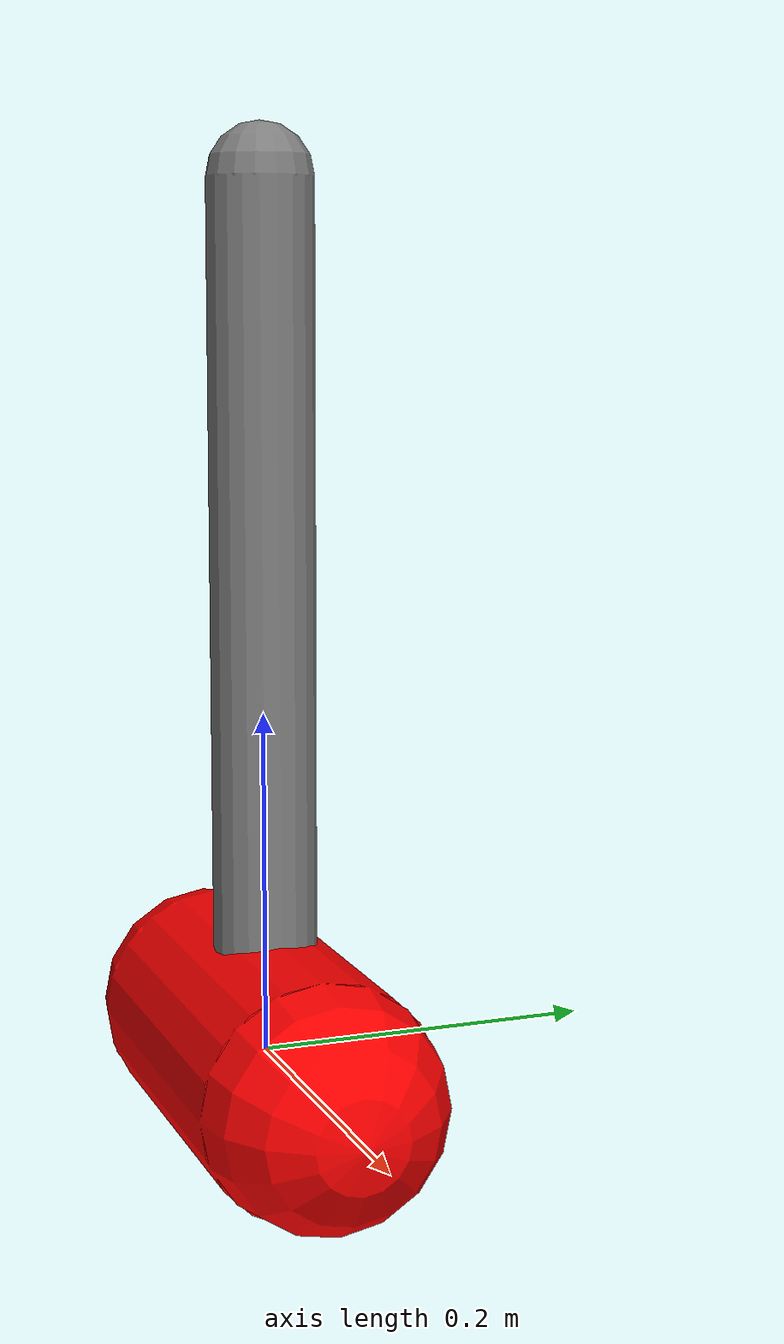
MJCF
<?xml version="1.0" encoding="utf-8"?>
<mujoco model="cart_pole">

    <visual>
        <global offwidth="1280" offheight="720"/>
    </visual>

    <option gravity="0 0 -9.81">
    <flag energy="enable"/>
    </option>

    <worldbody>
        <camera name="fixed" pos="-0.220 -4.372 1.228" xyaxes="0.999 -0.050 0.000 0.014 0.270 0.963"/>
        <!-- Fixed base -->
        <body name="base" pos="0 0 0">
            <body name="cart" pos="0 0 0">
                <joint name="joint1" type="slide" axis="1 0 0" pos="0 0 0" limited="true" range ="-0.6 0.6" />
                <geom name="link1_geom" type="capsule" fromto="-0.1 0 0 0.1 0 0" size="0.07" rgba="1 0 0 1"/>

                <body name="pole" pos="0 0 0">
                    <joint name="joint2" type="hinge" axis="0 1 0" pos="0 0 0" limited="false"/>
                    <geom name="link2_geom" type="capsule"
                          fromto="0 0 0 0 0 0.5" size="0.03"/>

                </body>

            </body>

        </body>
    </worldbody>

    <keyframe>
    <key name="keyframe_1" qpos="0 0.1" qvel="0 0" />
    </keyframe>

    <!-- actuators -->
    <actuator>
        <motor name="a1" joint="joint1" ctrlrange="-100 100" />

    </actuator>

</mujoco>
